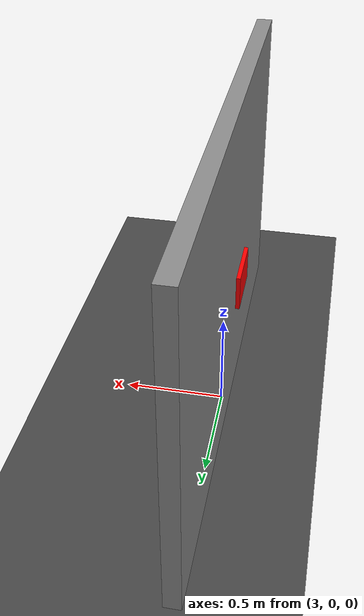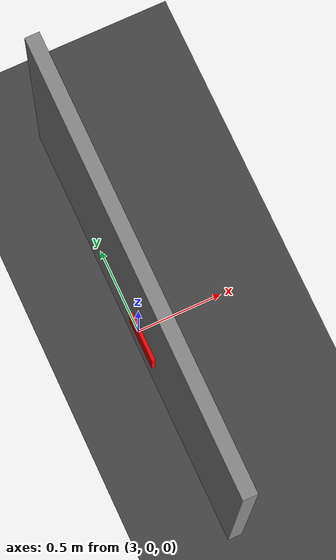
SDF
<?xml version="1.0"?>
<sdf version="1.6">
  <world name="inspection_tunnel">
    <plugin name="gazebo_ros_init" filename="libgazebo_ros_init.so"/>
    <plugin name="gazebo_ros_factory" filename="libgazebo_ros_factory.so"/>

    <physics name="default_physics" type="ode">
      <real_time_update_rate>1000</real_time_update_rate>
      <max_step_size>0.001</max_step_size>
    </physics>

    <light name="sun" type="directional">
      <cast_shadows>true</cast_shadows>
      <pose>0 0 10 0 0 0</pose>
      <diffuse>0.9 0.9 0.9 1</diffuse>
      <specular>0.2 0.2 0.2 1</specular>
      <direction>-0.3 0.1 -0.95</direction>
    </light>

    <model name="ground_plane">
      <static>true</static>
      <link name="ground_link">
        <collision name="ground_collision">
          <geometry>
            <plane>
              <normal>0 0 1</normal>
              <size>30 30</size>
            </plane>
          </geometry>
        </collision>
        <visual name="ground_visual">
          <geometry>
            <plane>
              <normal>0 0 1</normal>
              <size>30 30</size>
            </plane>
          </geometry>
          <material>
            <ambient>0.22 0.22 0.22 1</ambient>
            <diffuse>0.28 0.28 0.28 1</diffuse>
          </material>
        </visual>
      </link>
    </model>

    <model name="front_wall_with_damage">
      <static>true</static>
      <pose>3.0 0 0.8 0 0 0</pose>
      <link name="wall">
        <visual name="wall_visual">
          <geometry>
            <box>
              <size>0.08 2.5 1.6</size>
            </box>
          </geometry>
          <material>
            <ambient>0.55 0.55 0.55 1</ambient>
            <diffuse>0.55 0.55 0.55 1</diffuse>
          </material>
        </visual>
        <collision name="wall_collision">
          <geometry>
            <box>
              <size>0.08 2.5 1.6</size>
            </box>
          </geometry>
          <laser_retro>60.0</laser_retro>
        </collision>
      </link>
    </model>

    <!-- Visual-only texture defect. Lidar measures the concrete wall behind it. -->
    <model name="red_damage_patch">
      <static>true</static>
      <pose>2.94 -0.18 0.65 0 0 0</pose>
      <link name="patch">
        <visual name="patch_visual">
          <geometry>
            <box>
              <size>0.02 0.28 0.18</size>
            </box>
          </geometry>
          <material>
            <ambient>1 0 0 1</ambient>
            <diffuse>1 0 0 1</diffuse>
          </material>
        </visual>
      </link>
    </model>
  </world>
</sdf>
